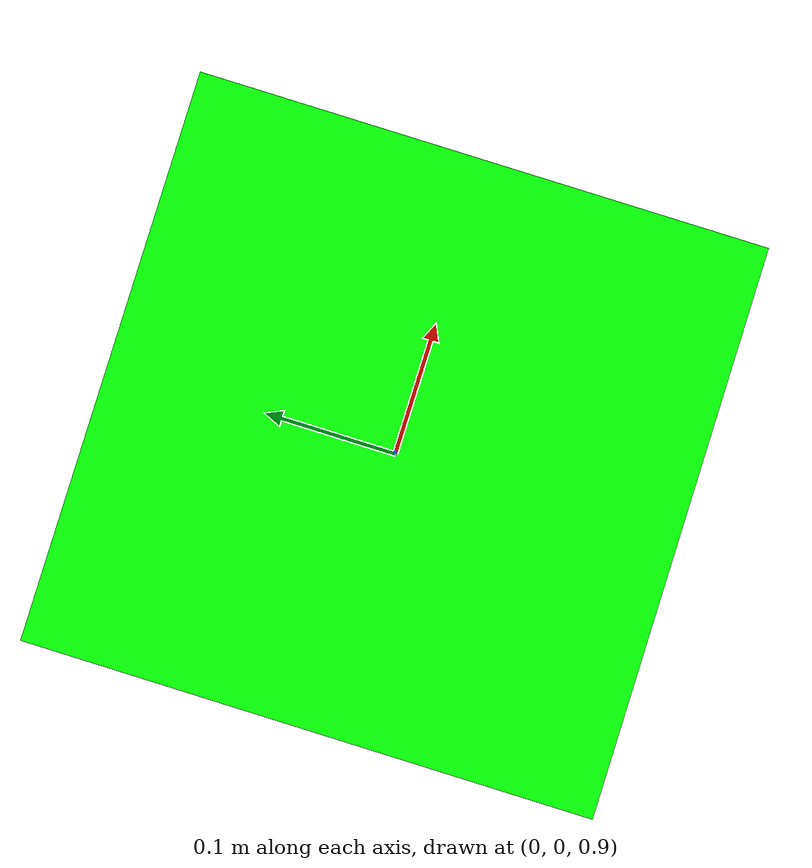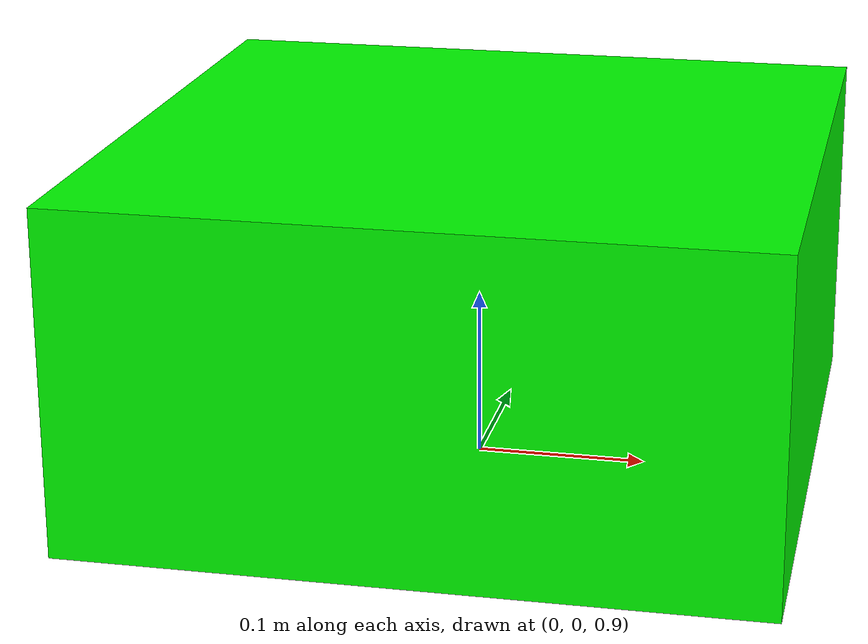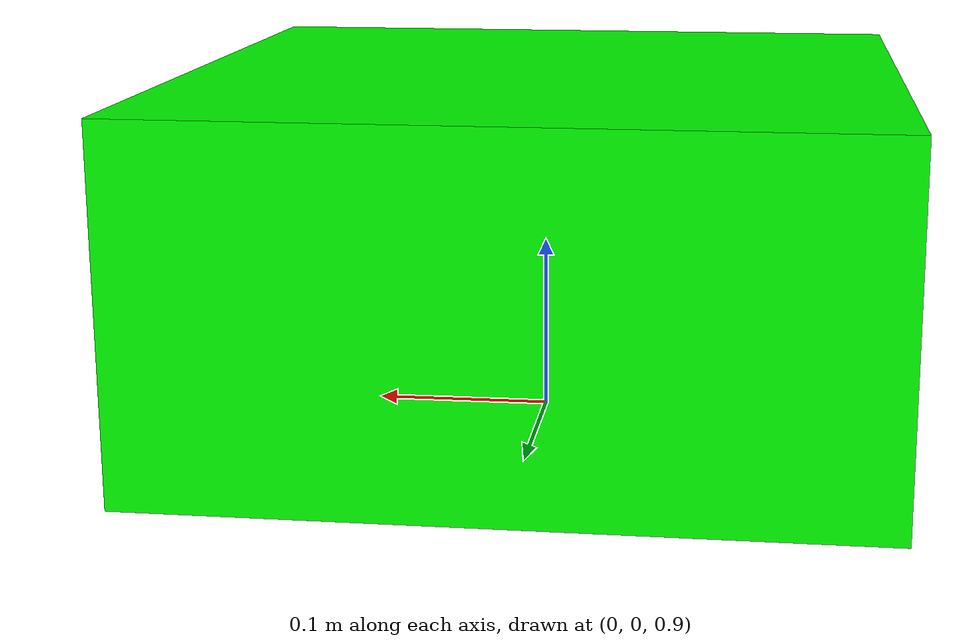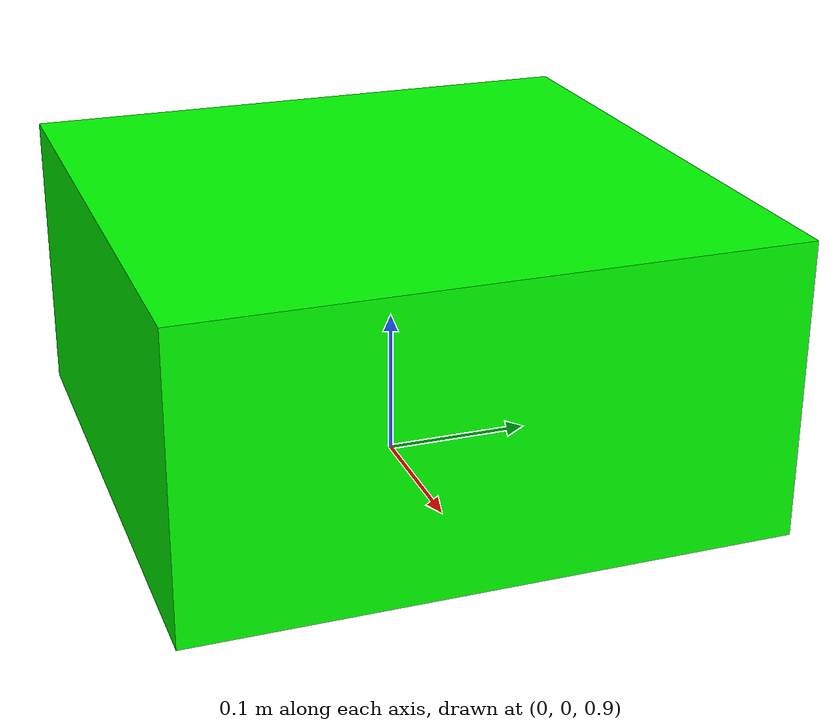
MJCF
<mujoco model="Quadrotor">
  <worldbody>
    <light pos="0 0 1"/>
    <geom name="floor" type="plane" size="10 10 0.1" rgba=".5 .5 .5 1"/>
    <body name="quadrotor_base" pos="0 0 1">
      <joint name="free_joint" type="free"/>
      <geom name="body" type="box" size=".2 .2 .1" rgba="0 1 0 1"/>
      <site name="site_x" pos="0 0 0" euler="0 90 0"/>
      <site name="site_y" pos="0 0 0" euler="-90 0 0"/>
      <site name="site_z" pos="0 0 0"/>
    </body>
  </worldbody>

  <actuator>
    <motor name="force_x" site="site_x"/>
    <motor name="force_y" site="site_y"/>
    <motor name="force_z" site="site_z"/>
  </actuator>
</mujoco>
